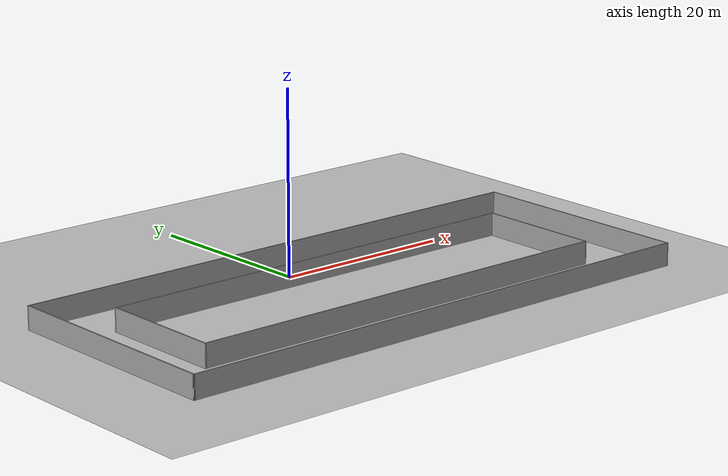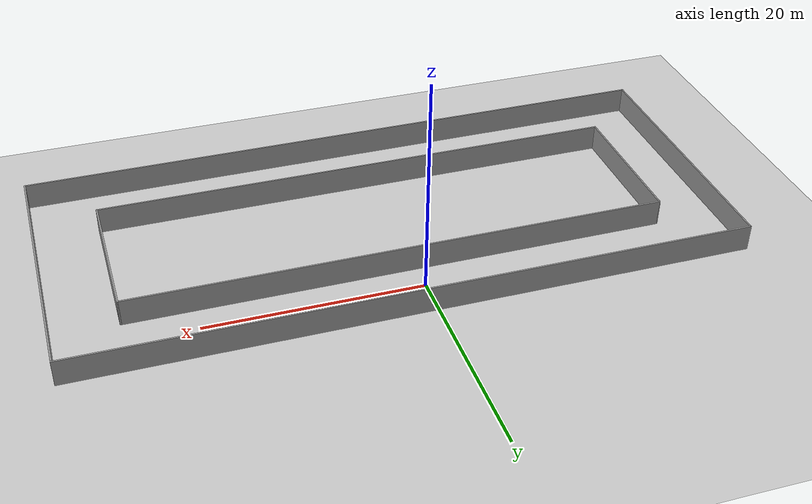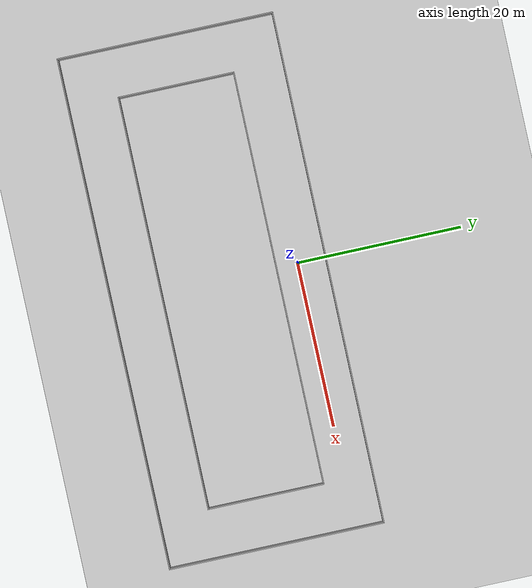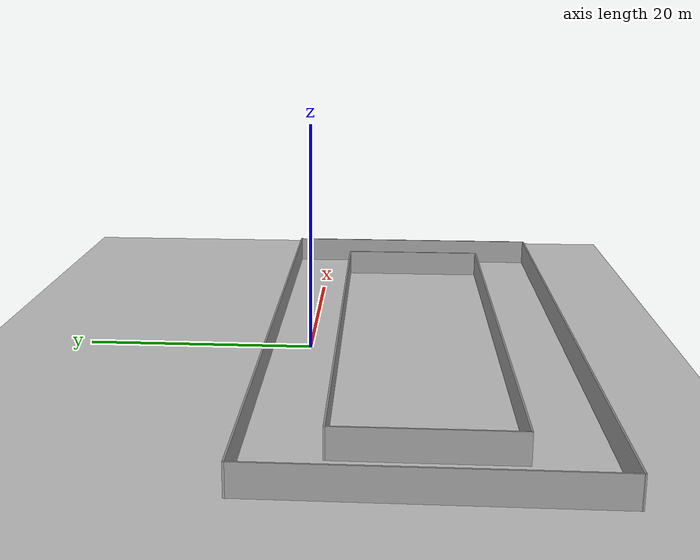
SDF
<sdf version="1.6">
 <world name="default">
  <light name="sun" type="directional">
   <pose>0 0 10 0 -0 0</pose>
   <diffuse>0.8 0.8 0.8 1</diffuse>
   <specular>0.1 0.1 0.1 1</specular>
   <attenuation>
    <range>1000</range>
    <constant>0.9</constant>
    <linear>0.01</linear>
    <quadratic>0.001</quadratic>
   </attenuation>
   <direction>-0.5 0.5 -1</direction>
  </light>
  <model name="ground_plane">
   <static>1</static>
   <link name="link">
    <collision name="collision">
     <geometry><plane><normal>0 0 1</normal><size>100 100</size></plane></geometry>
     <surface><friction><ode><mu>100</mu><mu2>50</mu2></ode></friction></surface>
    </collision>
    <visual name="visual">
     <cast_shadows>0</cast_shadows>
     <geometry><plane><normal>0 0 1</normal><size>100 100</size></plane></geometry>
     <material>
      <script><uri>file://media/materials/scripts/gazebo.material</uri><name>Gazebo/Grey</name></script>
     </material>
    </visual>
   </link>
  </model>
  <gravity>0 0 -9.8</gravity>
  <magnetic_field>6e-06 2.3e-05 -4.2e-05</magnetic_field>
  <atmosphere type="adiabatic"/>
  <physics type="ode">
   <max_step_size>0.01</max_step_size>
   <real_time_factor>1</real_time_factor>
   <real_time_update_rate>100</real_time_update_rate>
   <gravity>0 0 -9.8</gravity>
  </physics>
  <scene><ambient>0.4 0.4 0.4 1</ambient><background>0.7 0.7 0.7 1</background><shadows>1</shadows></scene>
  <spherical_coordinates>
   <surface_model>EARTH_WGS84</surface_model>
   <latitude_deg>0</latitude_deg>
   <longitude_deg>0</longitude_deg>
   <elevation>0</elevation>
   <heading_deg>0</heading_deg>
  </spherical_coordinates>
  <model name="gallery">
   <pose>1.31471 -9.63491 0 0 -0 0</pose>
   <link name="Wall_10">
    <collision name="Wall_10_Collision">
     <geometry><box><size>50.15 0.15 2.5</size></box></geometry>
     <pose>0 0 1.25 0 -0 0</pose>
    </collision>
    <visual name="Wall_10_Visual">
     <pose>0 0 1.25 0 -0 0</pose>
     <geometry><box><size>50.15 0.15 2.5</size></box></geometry>
     <material>
      <script><uri>file://media/materials/scripts/gazebo.material</uri><name>Gazebo/Grey</name></script>
      <ambient>1 1 1 1</ambient>
     </material>
    </visual>
    <pose>0 -6.94994 0 0 -0 0</pose>
   </link>
   <link name="Wall_11">
    <collision name="Wall_11_Collision">
     <geometry><box><size>14.15 0.15 2.5</size></box></geometry>
     <pose>0 0 1.25 0 -0 0</pose>
    </collision>
    <visual name="Wall_11_Visual">
     <pose>0 0 1.25 0 -0 0</pose>
     <geometry><box><size>14.15 0.15 2.5</size></box></geometry>
     <material>
      <script><uri>file://media/materials/scripts/gazebo.material</uri><name>Gazebo/Grey</name></script>
      <ambient>1 1 1 1</ambient>
     </material>
    </visual>
    <pose>25 0.050059 0 0 -0 1.5708</pose>
   </link>
   <link name="Wall_13">
    <collision name="Wall_13_Collision">
     <geometry><box><size>26.25 0.15 2.5</size></box></geometry>
     <pose>0 0 1.25 0 -0 0</pose>
    </collision>
    <visual name="Wall_13_Visual">
     <pose>0 0 1.25 0 -0 0</pose>
     <geometry><box><size>26.25 0.15 2.5</size></box></geometry>
     <material>
      <script><uri>file://media/materials/scripts/gazebo.material</uri><name>Gazebo/Grey</name></script>
      <ambient>1 1 1 1</ambient>
     </material>
    </visual>
    <pose>-31 5.9e-05 0 0 0 -1.5708</pose>
   </link>
   <link name="Wall_14">
    <collision name="Wall_14_Collision">
     <geometry><box><size>62.1501 0.15 2.5</size></box></geometry>
     <pose>0 0 1.25 0 -0 0</pose>
    </collision>
    <visual name="Wall_14_Visual">
     <pose>0 0 1.25 0 -0 0</pose>
     <geometry><box><size>62.1501 0.15 2.5</size></box></geometry>
     <material>
      <script><uri>file://media/materials/scripts/gazebo.material</uri><name>Gazebo/Grey</name></script>
      <ambient>1 1 1 1</ambient>
     </material>
    </visual>
    <pose>0 -12.9999 0 0 -0 0.001613</pose>
   </link>
   <link name="Wall_15">
    <collision name="Wall_15_Collision">
     <geometry><box><size>26.15 0.15 2.5</size></box></geometry>
     <pose>0 0 1.25 0 -0 0</pose>
    </collision>
    <visual name="Wall_15_Visual">
     <pose>0 0 1.25 0 -0 0</pose>
     <geometry><box><size>26.15 0.15 2.5</size></box></geometry>
     <material>
      <script><uri>file://media/materials/scripts/gazebo.material</uri><name>Gazebo/Grey</name></script>
      <ambient>1 1 1 1</ambient>
     </material>
    </visual>
    <pose>31 0.050059 0 0 -0 1.5708</pose>
   </link>
   <link name="Wall_5">
    <collision name="Wall_5_Collision">
     <geometry><box><size>50.15 0.15 2.5</size></box></geometry>
     <pose>0 0 1.25 0 -0 0</pose>
    </collision>
    <visual name="Wall_5_Visual">
     <pose>0 0 1.25 0 -0 0</pose>
     <geometry><box><size>50.15 0.15 2.5</size></box></geometry>
     <material>
      <script><uri>file://media/materials/scripts/gazebo.material</uri><name>Gazebo/Grey</name></script>
      <ambient>1 1 1 1</ambient>
     </material>
    </visual>
    <pose>0 7.05006 0 0 -0 0</pose>
   </link>
   <link name="Wall_7">
    <collision name="Wall_7_Collision">
     <geometry><box><size>62.15 0.15 2.5</size></box></geometry>
     <pose>0 0 1.25 0 -0 0</pose>
    </collision>
    <visual name="Wall_7_Visual">
     <pose>0 0 1.25 0 -0 0</pose>
     <geometry><box><size>62.15 0.15 2.5</size></box></geometry>
     <material>
      <script><uri>file://media/materials/scripts/gazebo.material</uri><name>Gazebo/Grey</name></script>
      <ambient>1 1 1 1</ambient>
     </material>
    </visual>
    <pose>0 13.0501 0 0 -0 0</pose>
   </link>
   <link name="Wall_9">
    <collision name="Wall_9_Collision">
     <geometry><box><size>14.15 0.15 2.5</size></box></geometry>
     <pose>0 0 1.25 0 -0 0</pose>
    </collision>
    <visual name="Wall_9_Visual">
     <pose>0 0 1.25 0 -0 0</pose>
     <geometry><box><size>14.15 0.15 2.5</size></box></geometry>
     <material>
      <script><uri>file://media/materials/scripts/gazebo.material</uri><name>Gazebo/Grey</name></script>
      <ambient>1 1 1 1</ambient>
     </material>
    </visual>
    <pose>-25 0.050059 0 0 0 -1.5708</pose>
   </link>
   <static>1</static>
  </model>
 </world>
</sdf>
